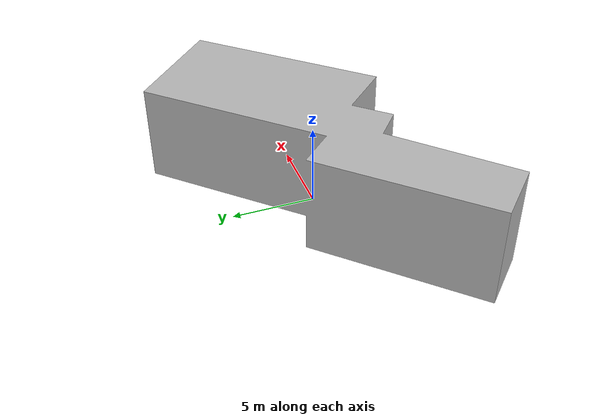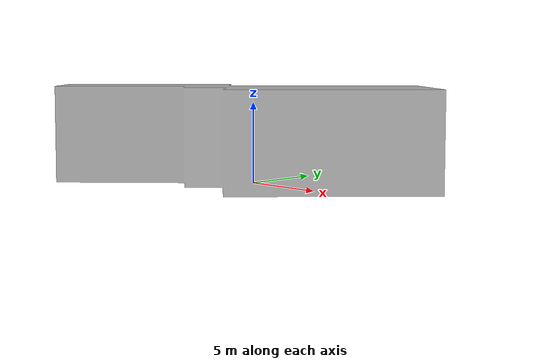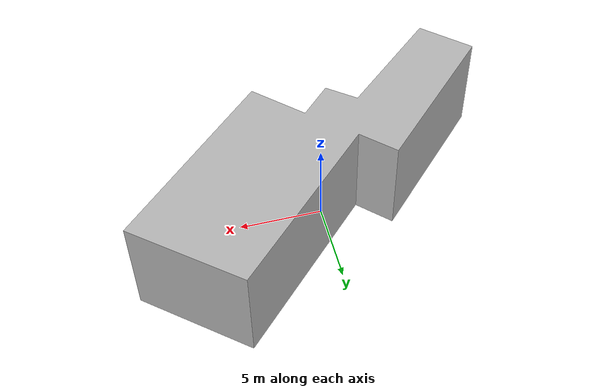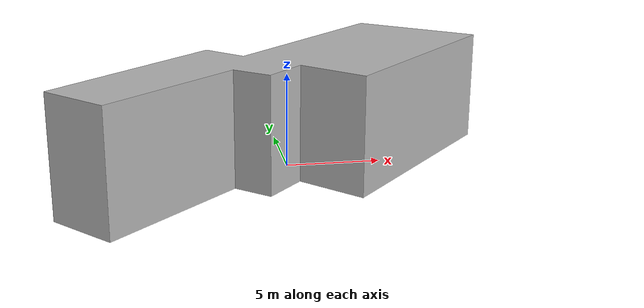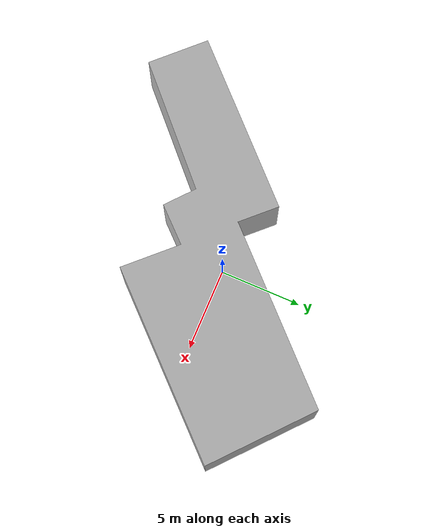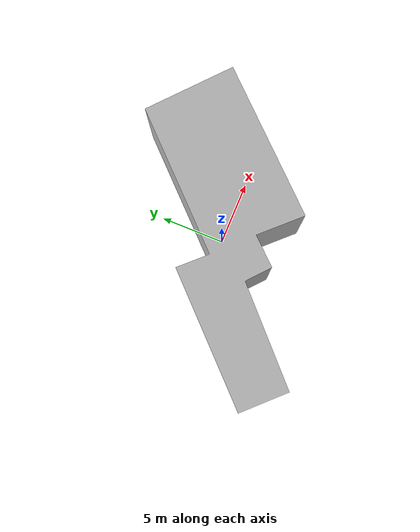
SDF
<?xml version="1.0" ?>
<sdf version="1.7">
  <model name="building_7021_assumed_a_casa">
    <static>true</static>
    <link name="building_link">
      <visual name="building_visual">
        <geometry>
          <mesh>
            <uri>model://building_7021_assumed_a_casa/meshes/construction_7021_assumed_A_Casa_h6m.obj</uri>
          </mesh>
        </geometry>
      </visual>
    <collision name="building_collision">
      <geometry>
        <mesh>
          <uri>model://building_7021_assumed_a_casa/meshes/construction_7021_assumed_A_Casa_h6m.obj</uri>
        </mesh>
      </geometry>
    </collision>
    </link>
  </model>
</sdf>
